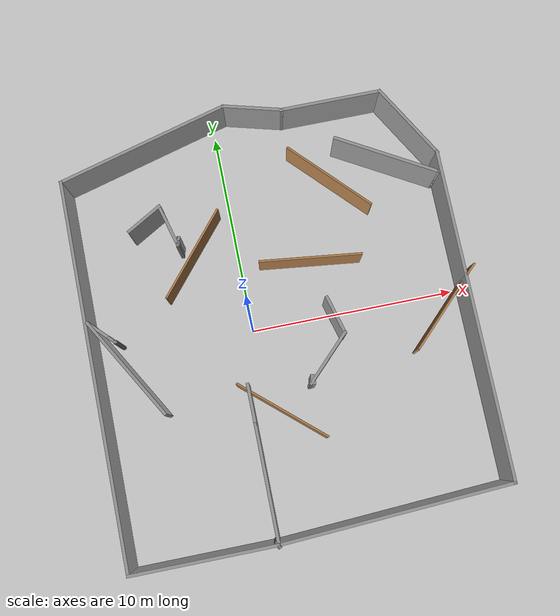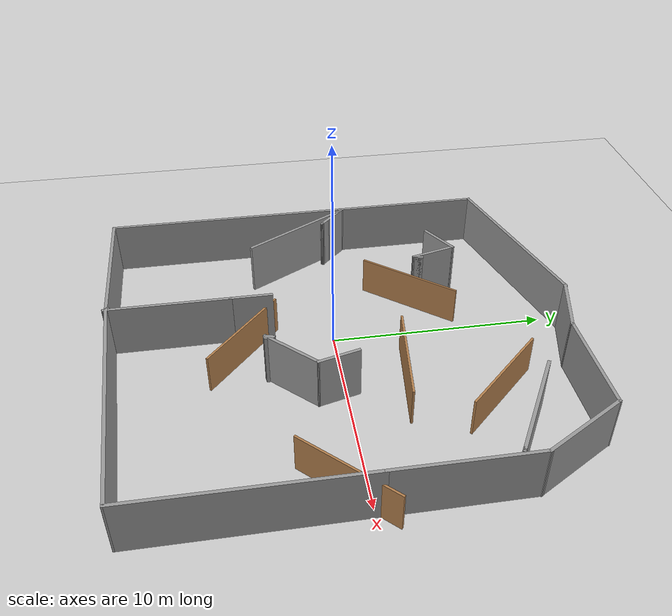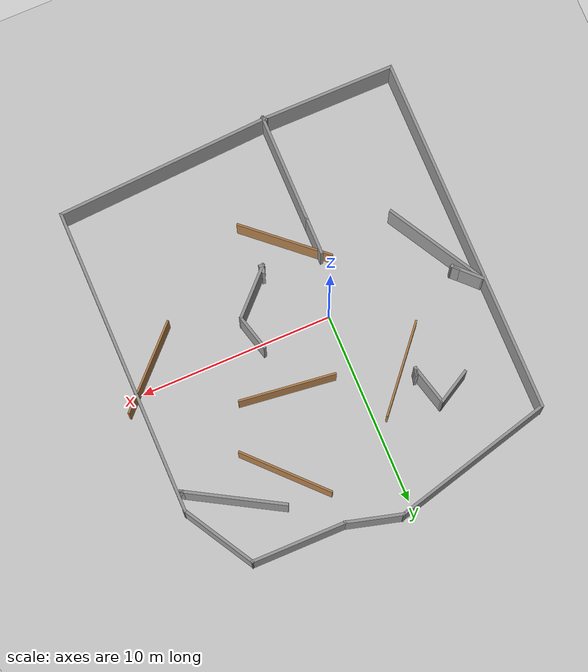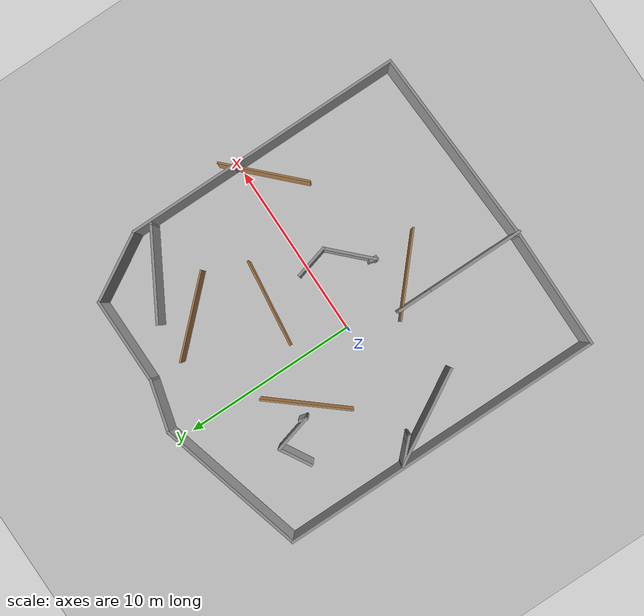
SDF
<sdf version="1.7">
 <world name="default">
  <light name="sun" type="directional">
   <pose>0 0 10 0 -0 0</pose>
   <diffuse>0.8 0.8 0.8 1</diffuse>
   <specular>0.2 0.2 0.2 1</specular>
   <attenuation>
    <range>1000</range>
    <constant>0.9</constant>
    <linear>0.01</linear>
    <quadratic>0.001</quadratic>
   </attenuation>
   <direction>-0.5 0.1 -0.9</direction>
   <spot><inner_angle>0</inner_angle><outer_angle>0</outer_angle><falloff>0</falloff></spot>
  </light>
  <model name="ground_plane">
   <static>1</static>
   <link name="link">
    <collision name="collision">
     <geometry><plane><normal>0 0 1</normal><size>100 100</size></plane></geometry>
     <surface><friction><ode><mu>100</mu><mu2>50</mu2></ode></friction></surface>
    </collision>
    <visual name="visual">
     <cast_shadows>0</cast_shadows>
     <geometry><plane><normal>0 0 1</normal><size>100 100</size></plane></geometry>
     <material>
      <script><uri>file://media/materials/scripts/gazebo.material</uri><name>Gazebo/Grey</name></script>
     </material>
    </visual>
   </link>
  </model>
  <gravity>0 0 -9.8</gravity>
  <magnetic_field>6e-06 2.3e-05 -4.2e-05</magnetic_field>
  <atmosphere type="adiabatic"/>
  <physics type="ode">
   <max_step_size>0.001</max_step_size>
   <real_time_factor>1</real_time_factor>
   <real_time_update_rate>1000</real_time_update_rate>
  </physics>
  <scene><ambient>0.4 0.4 0.4 1</ambient><background>0.7 0.7 0.7 1</background><shadows>1</shadows></scene>
  <audio><device>default</device></audio>
  <spherical_coordinates>
   <surface_model>EARTH_WGS84</surface_model>
   <latitude_deg>0</latitude_deg>
   <longitude_deg>0</longitude_deg>
   <elevation>0</elevation>
   <heading_deg>0</heading_deg>
  </spherical_coordinates>
  <model name="fence_clone_0">
   <static>1</static>
   <link name="link">
    <pose>0 0 0.915 0 -0 0</pose>
    <collision name="collision"><geometry><box><size>0.1 5 1.83</size></box></geometry></collision>
    <visual name="visual">
     <cast_shadows>0</cast_shadows>
     <geometry><box><size>0.1 5 1.83</size></box></geometry>
     <material>
      <script>
       <uri>https://fuel.ignitionrobotics.org/1.0/athackst/models/fence/2/files/materials/scripts</uri>
       <uri>https://fuel.ignitionrobotics.org/1.0/athackst/models/fence/2/files/materials/textures</uri>
       <name>Fence/WoodBoarding</name>
      </script>
     </material>
    </visual>
   </link>
   <pose>-2.15309 4.03097 0 0 0 -0.698434</pose>
  </model>
  <model name="fence_clone_1">
   <static>1</static>
   <link name="link">
    <pose>0 0 0.915 0 -0 0</pose>
    <collision name="collision"><geometry><box><size>0.1 5 1.83</size></box></geometry></collision>
    <visual name="visual">
     <cast_shadows>0</cast_shadows>
     <geometry><box><size>0.1 5 1.83</size></box></geometry>
     <material>
      <script>
       <uri>https://fuel.ignitionrobotics.org/1.0/athackst/models/fence/2/files/materials/scripts</uri>
       <uri>https://fuel.ignitionrobotics.org/1.0/athackst/models/fence/2/files/materials/textures</uri>
       <name>Fence/WoodBoarding</name>
      </script>
     </material>
    </visual>
   </link>
   <pose>3.38436 2.70867 0 0 0 -1.69059</pose>
  </model>
  <model name="fence_clone_2">
   <static>1</static>
   <link name="link">
    <pose>0 0 0.915 0 -0 0</pose>
    <collision name="collision"><geometry><box><size>0.1 5 1.83</size></box></geometry></collision>
    <visual name="visual">
     <cast_shadows>0</cast_shadows>
     <geometry><box><size>0.1 5 1.83</size></box></geometry>
     <material>
      <script>
       <uri>https://fuel.ignitionrobotics.org/1.0/athackst/models/fence/2/files/materials/scripts</uri>
       <uri>https://fuel.ignitionrobotics.org/1.0/athackst/models/fence/2/files/materials/textures</uri>
       <name>Fence/WoodBoarding</name>
      </script>
     </material>
    </visual>
   </link>
   <pose>5.09237 6.51391 0 0 -0 0.761512</pose>
  </model>
  <model name="fence_clone_3">
   <static>1</static>
   <link name="link">
    <pose>0 0 0.915 0 -0 0</pose>
    <collision name="collision"><geometry><box><size>0.1 5 1.83</size></box></geometry></collision>
    <visual name="visual">
     <cast_shadows>0</cast_shadows>
     <geometry><box><size>0.1 5 1.83</size></box></geometry>
     <material>
      <script>
       <uri>https://fuel.ignitionrobotics.org/1.0/athackst/models/fence/2/files/materials/scripts</uri>
       <uri>https://fuel.ignitionrobotics.org/1.0/athackst/models/fence/2/files/materials/textures</uri>
       <name>Fence/WoodBoarding</name>
      </script>
     </material>
    </visual>
   </link>
   <pose>9.26736 -0.88333 0 0.000349 0.00035 -0.785872</pose>
  </model>
  <model name="fence_clone_4">
   <static>1</static>
   <link name="link">
    <pose>0 0 0.915 0 -0 0</pose>
    <collision name="collision"><geometry><box><size>0.1 5 1.83</size></box></geometry></collision>
    <visual name="visual">
     <cast_shadows>0</cast_shadows>
     <geometry><box><size>0.1 5 1.83</size></box></geometry>
     <material>
      <script>
       <uri>https://fuel.ignitionrobotics.org/1.0/athackst/models/fence/2/files/materials/scripts</uri>
       <uri>https://fuel.ignitionrobotics.org/1.0/athackst/models/fence/2/files/materials/textures</uri>
       <name>Fence/WoodBoarding</name>
      </script>
     </material>
    </visual>
   </link>
   <pose>0.618724 -4.16533 0 0 0 -2.29094</pose>
  </model>
  <model name="Untitled">
   <pose>1.35522 0.270926 0 0 -0 0</pose>
   <link name="Wall_0">
    <collision name="Wall_0_Collision">
     <geometry><box><size>2 0.15 2.5</size></box></geometry>
     <pose>0 0 1.25 0 -0 0</pose>
    </collision>
    <visual name="Wall_0_Visual">
     <pose>0 0 1.25 0 -0 0</pose>
     <geometry><box><size>2 0.15 2.5</size></box></geometry>
     <material>
      <script><uri>file://media/materials/scripts/gazebo.material</uri><name>Gazebo/Grey</name></script>
      <ambient>1 1 1 1</ambient>
     </material>
     <meta><layer>0</layer></meta>
    </visual>
    <pose>-2.09522 -3.92592 0 0 -0 -1.5708</pose>
   </link>
   <link name="Wall_1">
    <collision name="Wall_1_Collision">
     <geometry><box><size>5.75 0.15 2.5</size></box></geometry>
     <pose>0 0 1.25 0 -0 0</pose>
    </collision>
    <visual name="Wall_1_Visual">
     <pose>0 0 1.25 0 -0 0</pose>
     <geometry><box><size>5.75 0.15 2.5</size></box></geometry>
     <material>
      <script><uri>file://media/materials/scripts/gazebo.material</uri><name>Gazebo/Grey</name></script>
      <ambient>1 1 1 1</ambient>
     </material>
     <meta><layer>0</layer></meta>
    </visual>
    <pose>-2.09522 -7.65093 0 0 -0 -1.5708</pose>
   </link>
   <link name="Wall_10">
    <collision name="Wall_10_Collision">
     <geometry><box><size>6.25 0.15 2.5</size></box></geometry>
     <pose>0 0 1.25 0 -0 0</pose>
    </collision>
    <visual name="Wall_10_Visual">
     <pose>0 0 1.25 0 -0 0</pose>
     <geometry><box><size>6.25 0.15 2.5</size></box></geometry>
     <material>
      <script><uri>file://media/materials/scripts/gazebo.material</uri><name>Gazebo/Grey</name></script>
      <ambient>1 1 1 1</ambient>
     </material>
     <meta><layer>0</layer></meta>
    </visual>
    <pose>8.97463 3.12318 0 0 -0 -1.5708</pose>
   </link>
   <link name="Wall_11">
    <collision name="Wall_11_Collision">
     <geometry><box><size>10 0.15 2.5</size></box></geometry>
     <pose>0 0 1.25 0 -0 0</pose>
    </collision>
    <visual name="Wall_11_Visual">
     <pose>0 0 1.25 0 -0 0</pose>
     <geometry><box><size>10 0.15 2.5</size></box></geometry>
     <material>
      <script><uri>file://media/materials/scripts/gazebo.material</uri><name>Gazebo/Grey</name></script>
      <ambient>1 1 1 1</ambient>
     </material>
     <meta><layer>0</layer></meta>
    </visual>
    <pose>8.97463 -4.85182 0 0 -0 -1.5708</pose>
   </link>
   <link name="Wall_12">
    <collision name="Wall_12_Collision">
     <geometry><box><size>11.2754 0.15 2.5</size></box></geometry>
     <pose>0 0 1.25 0 -0 0</pose>
    </collision>
    <visual name="Wall_12_Visual">
     <pose>0 0 1.25 0 -0 0</pose>
     <geometry><box><size>11.2754 0.15 2.5</size></box></geometry>
     <material>
      <script><uri>file://media/materials/scripts/gazebo.material</uri><name>Gazebo/Grey</name></script>
      <ambient>1 1 1 1</ambient>
     </material>
     <meta><layer>0</layer></meta>
    </visual>
    <pose>3.4197 -10.0706 0 0 -0 -3.08876</pose>
   </link>
   <link name="Wall_13">
    <collision name="Wall_13_Collision">
     <geometry><box><size>0.25 0.15 2.5</size></box></geometry>
     <pose>0 0 1.25 0 -0 0</pose>
    </collision>
    <visual name="Wall_13_Visual">
     <pose>0 0 1.25 0 -0 0</pose>
     <geometry><box><size>0.25 0.15 2.5</size></box></geometry>
     <material>
      <script><uri>file://media/materials/scripts/gazebo.material</uri><name>Gazebo/Grey</name></script>
      <ambient>1 1 1 1</ambient>
     </material>
     <meta><layer>0</layer></meta>
    </visual>
    <pose>-2.17058 -10.329 0 0 -0 2.35619</pose>
   </link>
   <link name="Wall_14">
    <collision name="Wall_14_Collision">
     <geometry><box><size>0.25 0.15 2.5</size></box></geometry>
     <pose>0 0 1.25 0 -0 0</pose>
    </collision>
    <visual name="Wall_14_Visual">
     <pose>0 0 1.25 0 -0 0</pose>
     <geometry><box><size>0.25 0.15 2.5</size></box></geometry>
     <material>
      <script><uri>file://media/materials/scripts/gazebo.material</uri><name>Gazebo/Grey</name></script>
      <ambient>1 1 1 1</ambient>
     </material>
     <meta><layer>0</layer></meta>
    </visual>
    <pose>-2.17058 -10.329 0 0 -0 -0.785398</pose>
   </link>
   <link name="Wall_16">
    <collision name="Wall_16_Collision">
     <geometry><box><size>2 0.15 2.5</size></box></geometry>
     <pose>0 0 1.25 0 -0 0</pose>
    </collision>
    <visual name="Wall_16_Visual">
     <pose>0 0 1.25 0 -0 0</pose>
     <geometry><box><size>2 0.15 2.5</size></box></geometry>
     <material>
      <script><uri>file://media/materials/scripts/gazebo.material</uri><name>Gazebo/Grey</name></script>
      <ambient>1 1 1 1</ambient>
     </material>
     <meta><layer>0</layer></meta>
    </visual>
    <pose>2.57682 -0.620689 0 0 -0 -1.309</pose>
   </link>
   <link name="Wall_17">
    <collision name="Wall_17_Collision">
     <geometry><box><size>3 0.15 2.5</size></box></geometry>
     <pose>0 0 1.25 0 -0 0</pose>
    </collision>
    <visual name="Wall_17_Visual">
     <pose>0 0 1.25 0 -0 0</pose>
     <geometry><box><size>3 0.15 2.5</size></box></geometry>
     <material>
      <script><uri>file://media/materials/scripts/gazebo.material</uri><name>Gazebo/Grey</name></script>
      <ambient>1 1 1 1</ambient>
     </material>
     <meta><layer>0</layer></meta>
    </visual>
    <pose>1.8086 -2.5218 0 0 -0 -2.35619</pose>
   </link>
   <link name="Wall_18">
    <collision name="Wall_18_Collision">
     <geometry><box><size>0.297509 0.15 2.5</size></box></geometry>
     <pose>0 0 1.25 0 -0 0</pose>
    </collision>
    <visual name="Wall_18_Visual">
     <pose>0 0 1.25 0 -0 0</pose>
     <geometry><box><size>0.297509 0.15 2.5</size></box></geometry>
     <material>
      <script><uri>file://media/materials/scripts/gazebo.material</uri><name>Gazebo/Grey</name></script>
      <ambient>1 1 1 1</ambient>
     </material>
     <meta><layer>0</layer></meta>
    </visual>
    <pose>0.874728 -3.52942 0 0 -0 0</pose>
   </link>
   <link name="Wall_19">
    <collision name="Wall_19_Collision">
     <geometry><box><size>0.5 0.15 2.5</size></box></geometry>
     <pose>0 0 1.25 0 -0 0</pose>
    </collision>
    <visual name="Wall_19_Visual">
     <pose>0 0 1.25 0 -0 0</pose>
     <geometry><box><size>0.5 0.15 2.5</size></box></geometry>
     <material>
      <script><uri>file://media/materials/scripts/gazebo.material</uri><name>Gazebo/Grey</name></script>
      <ambient>1 1 1 1</ambient>
     </material>
     <meta><layer>0</layer></meta>
    </visual>
    <pose>0.870022 -3.36039 0 0 -0 1.309</pose>
   </link>
   <link name="Wall_2">
    <collision name="Wall_2_Collision">
     <geometry><box><size>0.16 0.15 2.5</size></box></geometry>
     <pose>0 0 1.25 0 -0 0</pose>
    </collision>
    <visual name="Wall_2_Visual">
     <pose>0 0 1.25 0 -0 0</pose>
     <geometry><box><size>0.16 0.15 2.5</size></box></geometry>
     <material>
      <script><uri>file://media/materials/scripts/gazebo.material</uri><name>Gazebo/Grey</name></script>
      <ambient>1 1 1 1</ambient>
     </material>
     <meta><layer>0</layer></meta>
    </visual>
    <pose>-2.09022 -10.4509 0 0 -0 0</pose>
   </link>
   <link name="Wall_21">
    <collision name="Wall_21_Collision">
     <geometry><box><size>2 0.15 2.5</size></box></geometry>
     <pose>0 0 1.25 0 -0 0</pose>
    </collision>
    <visual name="Wall_21_Visual">
     <pose>0 0 1.25 0 -0 0</pose>
     <geometry><box><size>2 0.15 2.5</size></box></geometry>
     <material>
      <script><uri>file://media/materials/scripts/gazebo.material</uri><name>Gazebo/Grey</name></script>
      <ambient>1 1 1 1</ambient>
     </material>
     <meta><layer>0</layer></meta>
    </visual>
    <pose>-5.40058 5.68547 0 0 -0 0.523599</pose>
   </link>
   <link name="Wall_22">
    <collision name="Wall_22_Collision">
     <geometry><box><size>2.25 0.15 2.5</size></box></geometry>
     <pose>0 0 1.25 0 -0 0</pose>
    </collision>
    <visual name="Wall_22_Visual">
     <pose>0 0 1.25 0 -0 0</pose>
     <geometry><box><size>2.25 0.15 2.5</size></box></geometry>
     <material>
      <script><uri>file://media/materials/scripts/gazebo.material</uri><name>Gazebo/Grey</name></script>
      <ambient>1 1 1 1</ambient>
     </material>
     <meta><layer>0</layer></meta>
    </visual>
    <pose>-4.32774 5.13375 0 0 -0 -1.309</pose>
   </link>
   <link name="Wall_23">
    <collision name="Wall_23_Collision">
     <geometry><box><size>0.5 0.15 2.5</size></box></geometry>
     <pose>0 0 1.25 0 -0 0</pose>
    </collision>
    <visual name="Wall_23_Visual">
     <pose>0 0 1.25 0 -0 0</pose>
     <geometry><box><size>0.5 0.15 2.5</size></box></geometry>
     <material>
      <script><uri>file://media/materials/scripts/gazebo.material</uri><name>Gazebo/Grey</name></script>
      <ambient>1 1 1 1</ambient>
     </material>
     <meta><layer>0</layer></meta>
    </visual>
    <pose>-4.01069 4.28857 0 0 -0 1.309</pose>
   </link>
   <link name="Wall_24">
    <collision name="Wall_24_Collision">
     <geometry><box><size>0.5 0.15 2.5</size></box></geometry>
     <pose>0 0 1.25 0 -0 0</pose>
    </collision>
    <visual name="Wall_24_Visual">
     <pose>0 0 1.25 0 -0 0</pose>
     <geometry><box><size>0.5 0.15 2.5</size></box></geometry>
     <material>
      <script><uri>file://media/materials/scripts/gazebo.material</uri><name>Gazebo/Grey</name></script>
      <ambient>1 1 1 1</ambient>
     </material>
     <meta><layer>0</layer></meta>
    </visual>
    <pose>-4.01069 4.28857 0 0 -0 -1.8326</pose>
   </link>
   <link name="Wall_25">
    <collision name="Wall_25_Collision">
     <geometry><box><size>0.5 0.15 2.5</size></box></geometry>
     <pose>0 0 1.25 0 -0 0</pose>
    </collision>
    <visual name="Wall_25_Visual">
     <pose>0 0 1.25 0 -0 0</pose>
     <geometry><box><size>0.5 0.15 2.5</size></box></geometry>
     <material>
      <script><uri>file://media/materials/scripts/gazebo.material</uri><name>Gazebo/Grey</name></script>
      <ambient>1 1 1 1</ambient>
     </material>
     <meta><layer>0</layer></meta>
    </visual>
    <pose>-4.01069 4.28857 0 0 -0 1.309</pose>
   </link>
   <link name="Wall_27">
    <collision name="Wall_27_Collision">
     <geometry><box><size>5.25 0.15 2.5</size></box></geometry>
     <pose>0 0 1.25 0 -0 0</pose>
    </collision>
    <visual name="Wall_27_Visual">
     <pose>0 0 1.25 0 -0 0</pose>
     <geometry><box><size>5.25 0.15 2.5</size></box></geometry>
     <material>
      <script><uri>file://media/materials/scripts/gazebo.material</uri><name>Gazebo/Grey</name></script>
      <ambient>1 1 1 1</ambient>
     </material>
     <meta><layer>0</layer></meta>
    </visual>
    <pose>6.52585 6.54682 0 0 -0 -0.523599</pose>
   </link>
   <link name="Wall_28">
    <collision name="Wall_28_Collision">
     <geometry><box><size>0.25 0.15 2.5</size></box></geometry>
     <pose>0 0 1.25 0 -0 0</pose>
    </collision>
    <visual name="Wall_28_Visual">
     <pose>0 0 1.25 0 -0 0</pose>
     <geometry><box><size>0.25 0.15 2.5</size></box></geometry>
     <material>
      <script><uri>file://media/materials/scripts/gazebo.material</uri><name>Gazebo/Grey</name></script>
      <ambient>1 1 1 1</ambient>
     </material>
     <meta><layer>0</layer></meta>
    </visual>
    <pose>8.77752 5.24682 0 0 -0 -0.523599</pose>
   </link>
   <link name="Wall_29">
    <collision name="Wall_29_Collision">
     <geometry><box><size>0.25 0.15 2.5</size></box></geometry>
     <pose>0 0 1.25 0 -0 0</pose>
    </collision>
    <visual name="Wall_29_Visual">
     <pose>0 0 1.25 0 -0 0</pose>
     <geometry><box><size>0.25 0.15 2.5</size></box></geometry>
     <material>
      <script><uri>file://media/materials/scripts/gazebo.material</uri><name>Gazebo/Grey</name></script>
      <ambient>1 1 1 1</ambient>
     </material>
     <meta><layer>0</layer></meta>
    </visual>
    <pose>8.77752 5.24682 0 0 -0 2.61799</pose>
   </link>
   <link name="Wall_3">
    <collision name="Wall_3_Collision">
     <geometry><box><size>0.25 0.15 2.5</size></box></geometry>
     <pose>0 0 1.25 0 -0 0</pose>
    </collision>
    <visual name="Wall_3_Visual">
     <pose>0 0 1.25 0 -0 0</pose>
     <geometry><box><size>0.25 0.15 2.5</size></box></geometry>
     <material>
      <script><uri>file://media/materials/scripts/gazebo.material</uri><name>Gazebo/Grey</name></script>
      <ambient>1 1 1 1</ambient>
     </material>
     <meta><layer>0</layer></meta>
    </visual>
    <pose>-2.11022 -10.4076 0 0 -0 2.0944</pose>
   </link>
   <link name="Wall_31">
    <collision name="Wall_31_Collision">
     <geometry><box><size>5.75 0.15 2.5</size></box></geometry>
     <pose>0 0 1.25 0 -0 0</pose>
    </collision>
    <visual name="Wall_31_Visual">
     <pose>0 0 1.25 0 -0 0</pose>
     <geometry><box><size>5.75 0.15 2.5</size></box></geometry>
     <material>
      <script><uri>file://media/materials/scripts/gazebo.material</uri><name>Gazebo/Grey</name></script>
      <ambient>1 1 1 1</ambient>
     </material>
     <meta><layer>0</layer></meta>
    </visual>
    <pose>-7.4779 -1.13873 0 0 -0 2.0944</pose>
   </link>
   <link name="Wall_32">
    <collision name="Wall_32_Collision">
     <geometry><box><size>1.75 0.15 2.5</size></box></geometry>
     <pose>0 0 1.25 0 -0 0</pose>
    </collision>
    <visual name="Wall_32_Visual">
     <pose>0 0 1.25 0 -0 0</pose>
     <geometry><box><size>1.75 0.15 2.5</size></box></geometry>
     <material>
      <script><uri>file://media/materials/scripts/gazebo.material</uri><name>Gazebo/Grey</name></script>
      <ambient>1 1 1 1</ambient>
     </material>
     <meta><layer>0</layer></meta>
    </visual>
    <pose>-8.31221 0.720459 0 0 -0 -0.785398</pose>
   </link>
   <link name="Wall_33">
    <collision name="Wall_33_Collision">
     <geometry><box><size>0.16 0.15 2.5</size></box></geometry>
     <pose>0 0 1.25 0 -0 0</pose>
    </collision>
    <visual name="Wall_33_Visual">
     <pose>0 0 1.25 0 -0 0</pose>
     <geometry><box><size>0.16 0.15 2.5</size></box></geometry>
     <material>
      <script><uri>file://media/materials/scripts/gazebo.material</uri><name>Gazebo/Grey</name></script>
      <ambient>1 1 1 1</ambient>
     </material>
     <meta><layer>0</layer></meta>
    </visual>
    <pose>-7.74152 0.154774 0 0 -0 0</pose>
   </link>
   <link name="Wall_34">
    <collision name="Wall_34_Collision">
     <geometry><box><size>0.5 0.15 2.5</size></box></geometry>
     <pose>0 0 1.25 0 -0 0</pose>
    </collision>
    <visual name="Wall_34_Visual">
     <pose>0 0 1.25 0 -0 0</pose>
     <geometry><box><size>0.5 0.15 2.5</size></box></geometry>
     <material>
      <script><uri>file://media/materials/scripts/gazebo.material</uri><name>Gazebo/Grey</name></script>
      <ambient>1 1 1 1</ambient>
     </material>
     <meta><layer>0</layer></meta>
    </visual>
    <pose>-7.86027 0.278517 0 0 -0 2.35619</pose>
   </link>
   <link name="Wall_4">
    <collision name="Wall_4_Collision">
     <geometry><box><size>7 0.15 2.5</size></box></geometry>
     <pose>0 0 1.25 0 -0 0</pose>
    </collision>
    <visual name="Wall_4_Visual">
     <pose>0 0 1.25 0 -0 0</pose>
     <geometry><box><size>7 0.15 2.5</size></box></geometry>
     <material>
      <script><uri>file://media/materials/scripts/gazebo.material</uri><name>Gazebo/Grey</name></script>
      <ambient>1 1 1 1</ambient>
     </material>
     <meta><layer>0</layer></meta>
    </visual>
    <pose>-5.56022 -10.3643 0 0 -0 3.14159</pose>
   </link>
   <link name="Wall_5">
    <collision name="Wall_5_Collision">
     <geometry><box><size>18.75 0.15 2.5</size></box></geometry>
     <pose>0 0 1.25 0 -0 0</pose>
    </collision>
    <visual name="Wall_5_Visual">
     <pose>0 0 1.25 0 -0 0</pose>
     <geometry><box><size>18.75 0.15 2.5</size></box></geometry>
     <material>
      <script><uri>file://media/materials/scripts/gazebo.material</uri><name>Gazebo/Grey</name></script>
      <ambient>1 1 1 1</ambient>
     </material>
     <meta><layer>0</layer></meta>
    </visual>
    <pose>-8.98522 -1.06432 0 0 -0 1.5708</pose>
   </link>
   <link name="Wall_6">
    <collision name="Wall_6_Collision">
     <geometry><box><size>8.75 0.15 2.5</size></box></geometry>
     <pose>0 0 1.25 0 -0 0</pose>
    </collision>
    <visual name="Wall_6_Visual">
     <pose>0 0 1.25 0 -0 0</pose>
     <geometry><box><size>8.75 0.15 2.5</size></box></geometry>
     <material>
      <script><uri>file://media/materials/scripts/gazebo.material</uri><name>Gazebo/Grey</name></script>
      <ambient>1 1 1 1</ambient>
     </material>
     <meta><layer>0</layer></meta>
    </visual>
    <pose>-4.83174 9.3486 0 0 -0 0.261799</pose>
   </link>
   <link name="Wall_7">
    <collision name="Wall_7_Collision">
     <geometry><box><size>3 0.15 2.5</size></box></geometry>
     <pose>0 0 1.25 0 -0 0</pose>
    </collision>
    <visual name="Wall_7_Visual">
     <pose>0 0 1.25 0 -0 0</pose>
     <geometry><box><size>3 0.15 2.5</size></box></geometry>
     <material>
      <script><uri>file://media/materials/scripts/gazebo.material</uri><name>Gazebo/Grey</name></script>
      <ambient>1 1 1 1</ambient>
     </material>
     <meta><layer>0</layer></meta>
    </visual>
    <pose>0.698183 10.0927 0 0 -0 -0.261799</pose>
   </link>
   <link name="Wall_8">
    <collision name="Wall_8_Collision">
     <geometry><box><size>5 0.15 2.5</size></box></geometry>
     <pose>0 0 1.25 0 -0 0</pose>
    </collision>
    <visual name="Wall_8_Visual">
     <pose>0 0 1.25 0 -0 0</pose>
     <geometry><box><size>5 0.15 2.5</size></box></geometry>
     <material>
      <script><uri>file://media/materials/scripts/gazebo.material</uri><name>Gazebo/Grey</name></script>
      <ambient>1 1 1 1</ambient>
     </material>
     <meta><layer>0</layer></meta>
    </visual>
    <pose>4.49963 9.72389 0 0 -0 0</pose>
   </link>
   <link name="Wall_9">
    <collision name="Wall_9_Collision">
     <geometry><box><size>4.25 0.15 2.5</size></box></geometry>
     <pose>0 0 1.25 0 -0 0</pose>
    </collision>
    <visual name="Wall_9_Visual">
     <pose>0 0 1.25 0 -0 0</pose>
     <geometry><box><size>4.25 0.15 2.5</size></box></geometry>
     <material>
      <script><uri>file://media/materials/scripts/gazebo.material</uri><name>Gazebo/Grey</name></script>
      <ambient>1 1 1 1</ambient>
     </material>
     <meta><layer>0</layer></meta>
    </visual>
    <pose>7.94963 7.94853 0 0 -0 -1.0472</pose>
   </link>
   <static>1</static>
  </model>
 </world>
</sdf>
